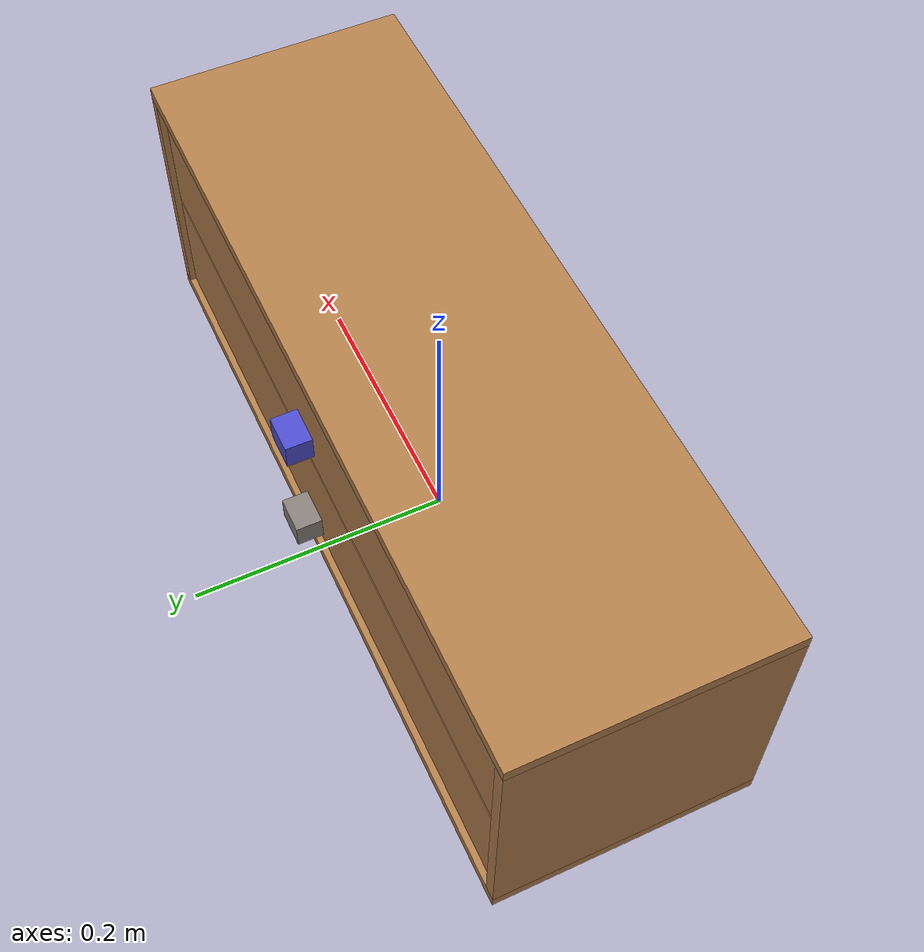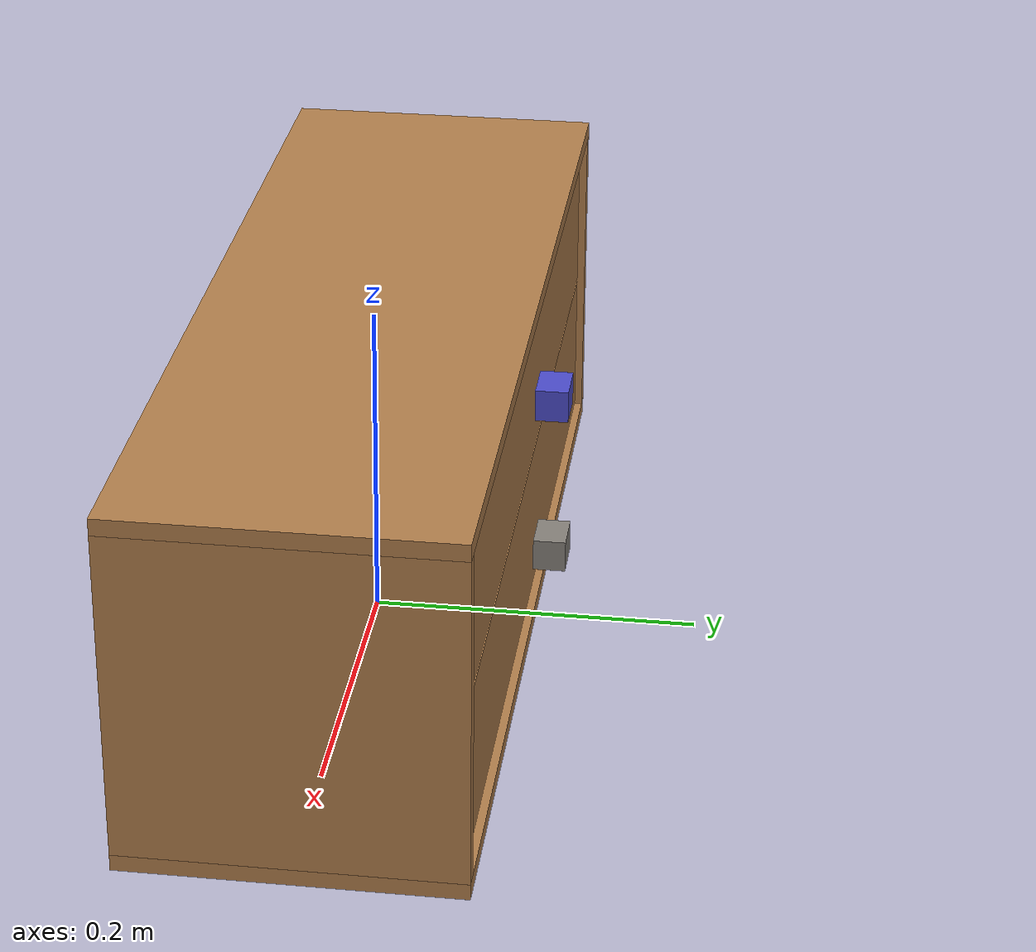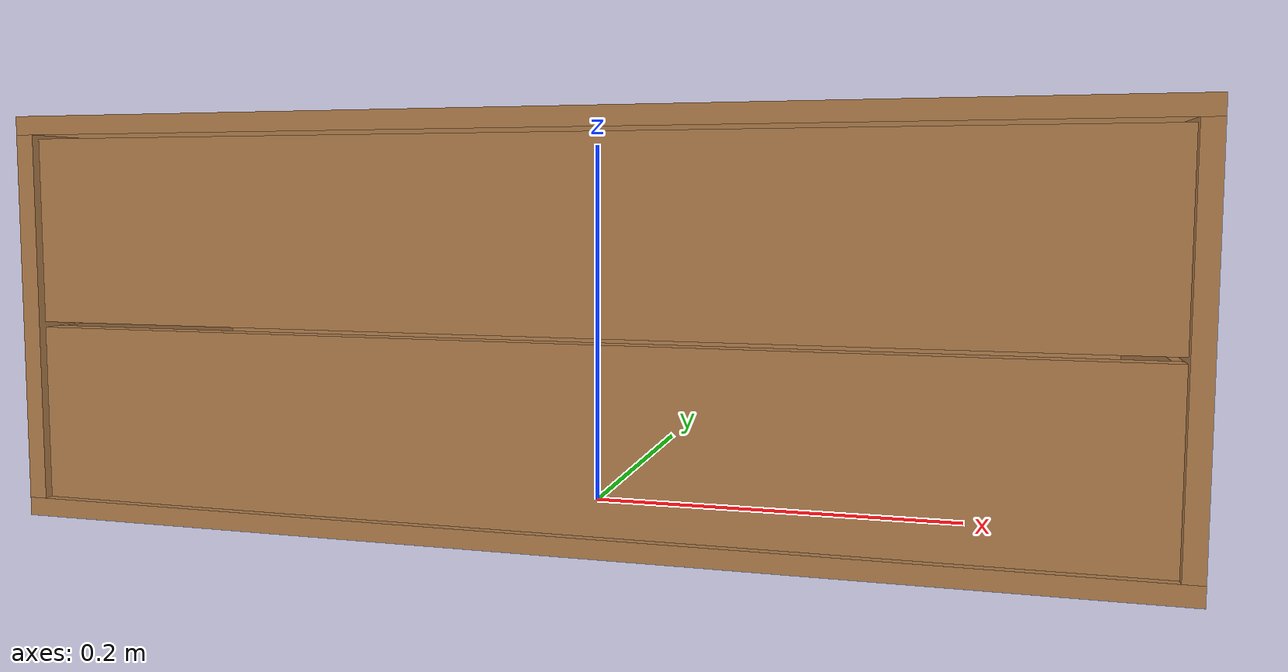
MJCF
<mujoco model="three_drawer_cabinet">
  <asset>
    <texture name="wood_tex" type="2d" file="../textures/wood-tiles.png" />
    <material name="wood_mat" texture="wood_tex" specular="0.3" shininess="0.1" rgba="1 1 1 1" />
    <texture name="metal_tex" type="2d" file="../textures/steel-brushed.png" />
    <material name="metal_mat" texture="metal_tex" specular="0.9" shininess="80"
      rgba="0.7 0.7 0.7 1" />
  </asset>
  <worldbody>
    <body>
      <body name="object" pos="0 0 0.00">
        <geom name="cab_side_L" type="box" pos="0.295 0 0.105" size="0.005 0.10 0.10"
          material="wood_mat" density="500000" group="0" />
        <geom name="cab_side_R" type="box" pos="-0.295 0 0.105" size="0.005 0.10 0.10"
          material="wood_mat" density="500000" group="0" />
        <geom name="cab_bottom" type="box" pos="0 0 0" size="0.30 0.10 0.005"
          material="wood_mat" density="500000" group="0" />
        <geom name="cab_top" type="box" pos="0 0 0.21" size="0.30 0.10 0.005"
          material="wood_mat" density="500000" group="0" />

        <body name="drawer1" pos="0 0 0.05">
          <joint name="drawer1_slide" type="slide" axis="0 1 0" range="0 0.19"
            damping="0.05" frictionloss="0.3" />
          <geom name="d1_left" type="box" pos="0.290 0 0" size="0.005 0.090 0.05"
            material="wood_mat" density="500" group="0" />
          <geom name="d1_right" type="box" pos="-0.290 0 0" size="0.005 0.090 0.05"
            material="wood_mat" density="500" group="0" />
          <geom name="d1_back" type="box" pos="0 -0.090 0" size="0.290 0.005 0.05"
            material="wood_mat" density="500" group="0" />
          <geom name="d1_front" type="box" pos="0 0.090 0" size="0.290 0.005 0.05"
            material="wood_mat" density="500" group="0" />
          <geom name="d1_bottom" type="box" pos="0 0 -0.045" size="0.290 0.090 0.005"
            material="wood_mat" density="500" group="0" />
          <geom name="d1_handle" type="box" pos="0 0.11 0" size="0.014 0.01 0.01"
            material="metal_mat" density="500" group="0" />
        </body>

        <body name="drawer2" pos="0 0 0.153">
          <joint name="drawer2_slide" type="slide" axis="0 1 0" range="0 0.19"
            damping="0.05" frictionloss="0.3" />
          <geom name="d2_left" type="box" pos="0.290 0 0" size="0.005 0.090 0.05"
            material="wood_mat" density="500" group="0" />
          <geom name="d2_right" type="box" pos="-0.290 0 0" size="0.005 0.090 0.05"
            material="wood_mat" density="500" group="0" />
          <geom name="d2_back" type="box" pos="0 -0.090 0" size="0.290 0.005 0.05"
            material="wood_mat" density="500" group="0" />
          <geom name="d2_front" type="box" pos="0 0.090 0" size="0.290 0.005 0.05"
            material="wood_mat" density="500" group="0" />
          <geom name="d2_bottom" type="box" pos="0 0 -0.045" size="0.290 0.090 0.005"
            material="wood_mat" density="500" group="0" />
          <geom name="d2_handle" type="box" pos="0 0.11 0" size="0.014 0.01 0.01"
            material="metal_mat" density="500" group="0" rgba="0.3 0.3 0.8 1" />
        </body>

      </body>

      <site rgba="0 0 0 0" size="0.005" pos="0 0 0" name="bottom_site" />
      <site rgba="0 0 0 0" size="0.005" pos="0 0 0.2" name="top_site" />
      <site rgba="0 0 0 0" size="0.005" pos="0.1 0.05 0"
        name="horizontal_radius_site" />
    </body>
  </worldbody>
</mujoco>
